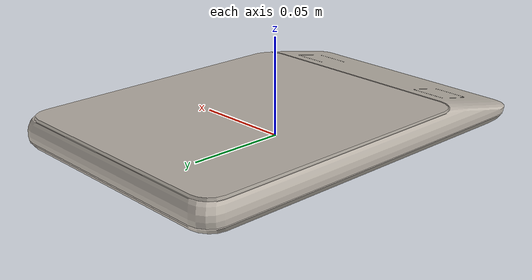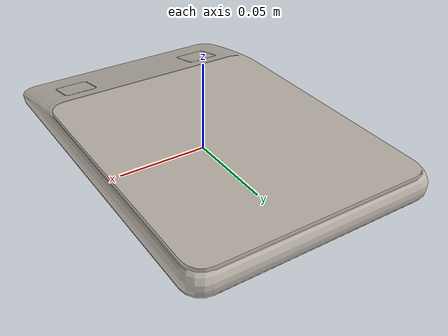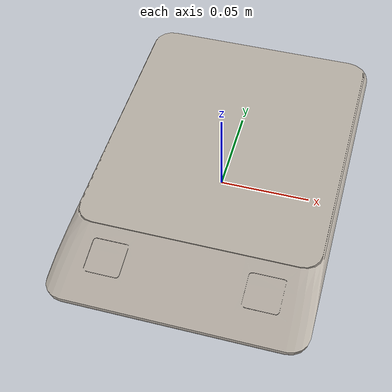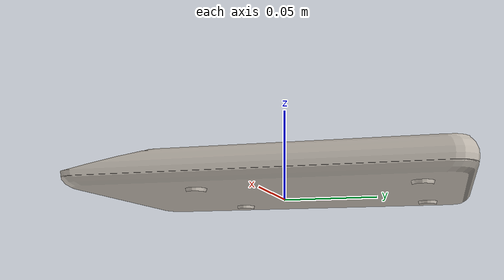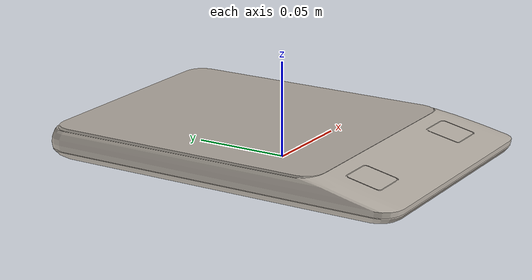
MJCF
<?xml version="1.0" ?>
<mujoco model="electronic_scale">
  <asset>
    <texture type="2d" name="material_0" file="material_0.png"/>
    <material name="material_0" texture="material_0" specular="0.4000000000000001" shininess="0.001"/>
    <mesh file="electronic_scale.obj" scale="0.009079 0.009079 0.009079"/>
    <mesh file="electronic_scale/electronic_scale_collision_0.obj" scale="0.009079 0.009079 0.009079"/>
    <mesh file="electronic_scale/electronic_scale_collision_1.obj" scale="0.009079 0.009079 0.009079"/>
  </asset>
  <worldbody>
    <body name="electronic_scale">
      <inertial pos="0 0 0.025000" mass="0.02" diaginertia="0.0008 0.0008 0.0005"/>
      <geom material="material_0" mesh="electronic_scale" class="visual"/>
      <geom mesh="electronic_scale_collision_0" class="collision"/>
      <geom mesh="electronic_scale_collision_1" class="collision"/>
      <site class="grasppoint" pos="0.0000 0.0000 0.0109"/>
      <site class="grasppoint" pos="0.0000 0.0000 0.0145"/>
      <site class="grasppoint" pos="0.0000 0.0000 0.0172"/>
      <site class="keypoint" pos="-0.2442 -0.3625 0.0000"/>
      <site class="keypoint" pos="0.2438 0.3628 0.0000"/>
      <site class="keypoint" pos="-0.2442 0.3628 0.0000"/>
      <site class="keypoint" pos="0.2438 -0.3625 0.0000"/>
      <site class="placepoint" pos="0.0000 0.0000 0.0364"/>
      <site name="top_site" pos="0 0 0.0362" size="0.01" rgba="1 0 0 0"/>
      <site name="bottom_site" pos="0 0 0.0" size="0.01" rgba="0 1 0 0"/>
    </body>
  </worldbody>
  <compiler boundmass="0.015" boundinertia="1e-05" angle="radian"/>
  <default>
    <default class="visual">
      <geom group="2" type="mesh" contype="0" conaffinity="0" density="50"/>
    </default>
    <default class="keypoint">
      <site type="sphere" size="0.01" group="3" rgba="1 0 0 1"/>
    </default>
    <default class="placepoint">
      <site type="sphere" size="0.01" group="2" rgba="0 0 1 0"/>
    </default>
    <default class="collision">
      <geom group="3" type="mesh" density="50" friction="1.5 0.1 0.1" solimp="0.9 0.95 0.001" solref="0.02 1"/>
    </default>
    <default class="grasppoint">
      <site type="sphere" size="0.005" group="4" rgba="0 0 1 1"/>
    </default>
  </default>
</mujoco>
